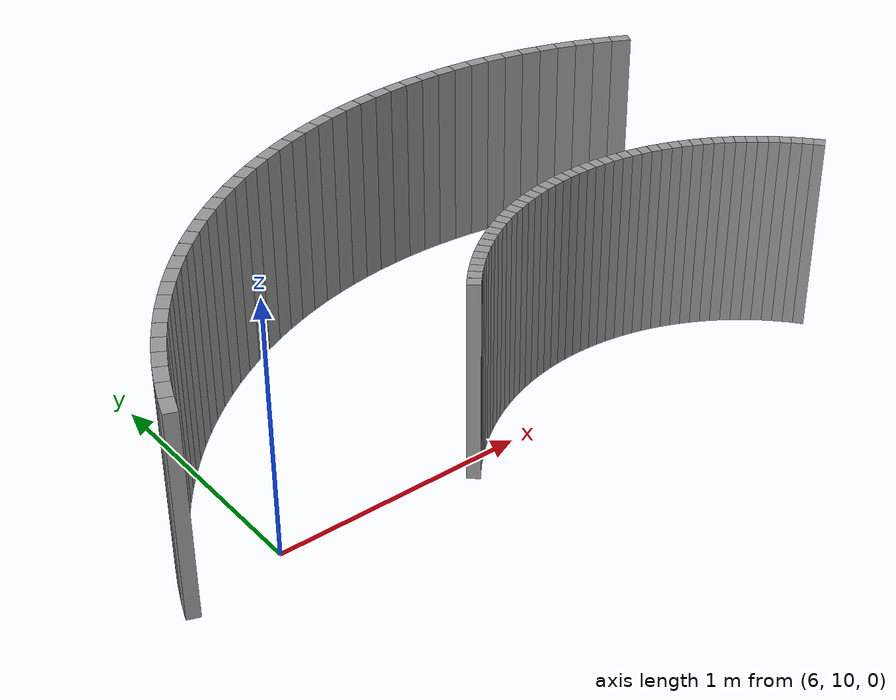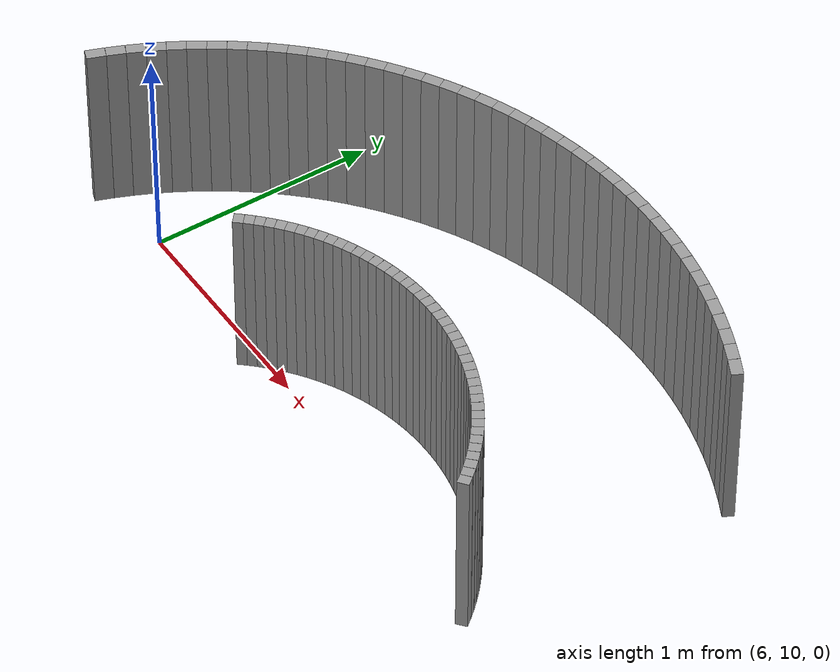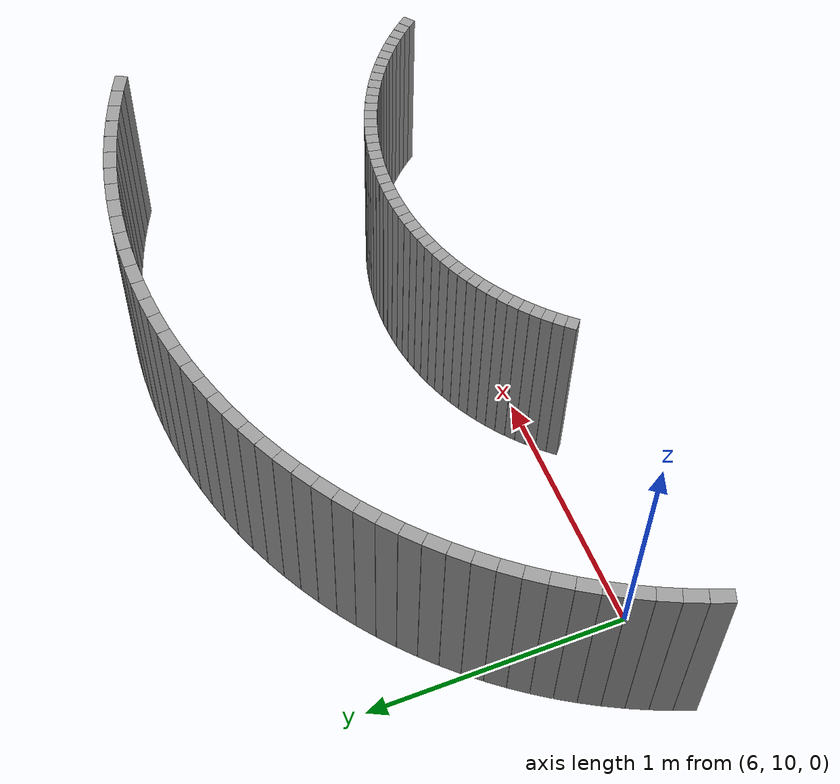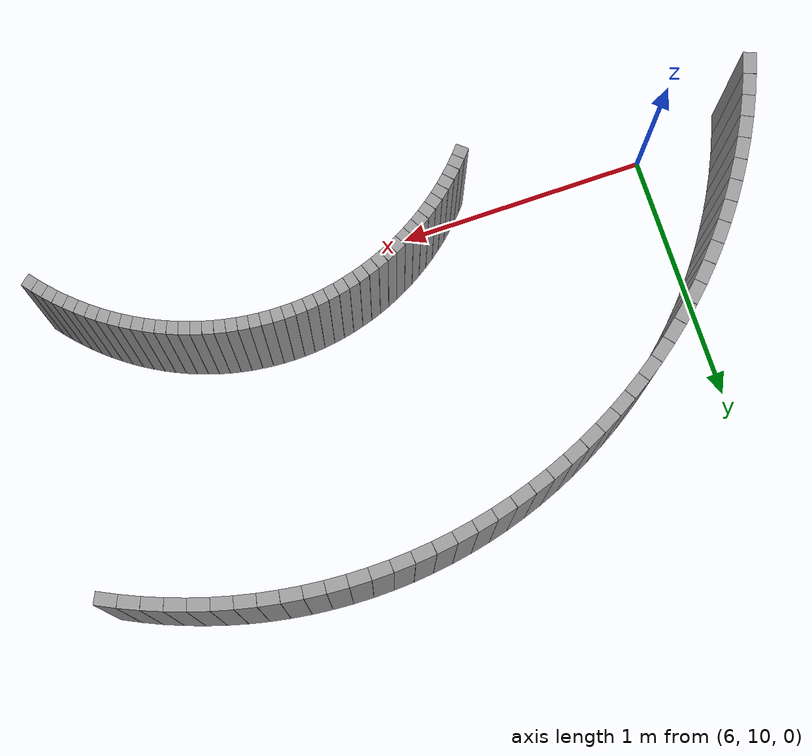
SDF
<sdf version="1.6">
 <model name="path_walls">
  <static>true</static>
  <model name="wall_left_233">
   <static>true</static>
   <pose>8.413291569347987 9.89759065078741 0.40 0 0 2.246835252250944</pose>
   <link name="wall_link">
    <visual name="wall_visual">
     <geometry><box><size>0.04273741812055125 0.05 0.8</size></box></geometry>
     <material><ambient>0.3 0.3 0.3 1</ambient><diffuse>0.6 0.6 0.6 1</diffuse></material>
    </visual>
    <collision name="wall_collision">
     <geometry><box><size>0.04273741812055125 0.05 0.8</size></box></geometry>
    </collision>
   </link>
  </model>
  <model name="wall_left_234">
   <static>true</static>
   <pose>8.385898298408511 9.9303835402917 0.40 0 0 2.2866022478659915</pose>
   <link name="wall_link">
    <visual name="wall_visual">
     <geometry><box><size>0.04273741812055249 0.05 0.8</size></box></geometry>
     <material><ambient>0.3 0.3 0.3 1</ambient><diffuse>0.6 0.6 0.6 1</diffuse></material>
    </visual>
    <collision name="wall_collision">
     <geometry><box><size>0.04273741812055249 0.05 0.8</size></box></geometry>
    </collision>
   </link>
  </model>
  <model name="wall_left_235">
   <static>true</static>
   <pose>8.357222953658342 9.962061442656967 0.40 0 0 2.326369243481072</pose>
   <link name="wall_link">
    <visual name="wall_visual">
     <geometry><box><size>0.04273741812055752 0.05 0.8</size></box></geometry>
     <material><ambient>0.3 0.3 0.3 1</ambient><diffuse>0.6 0.6 0.6 1</diffuse></material>
    </visual>
    <collision name="wall_collision">
     <geometry><box><size>0.04273741812055752 0.05 0.8</size></box></geometry>
    </collision>
   </link>
  </model>
  <model name="wall_left_236">
   <static>true</static>
   <pose>8.32731087671161 9.992574268608326 0.40 0 0 2.3661362390960896</pose>
   <link name="wall_link">
    <visual name="wall_visual">
     <geometry><box><size>0.04273741812056665 0.05 0.8</size></box></geometry>
     <material><ambient>0.3 0.3 0.3 1</ambient><diffuse>0.6 0.6 0.6 1</diffuse></material>
    </visual>
    <collision name="wall_collision">
     <geometry><box><size>0.04273741812056665 0.05 0.8</size></box></geometry>
    </collision>
   </link>
  </model>
  <model name="wall_left_237">
   <static>true</static>
   <pose>8.296209364710272 10.021873771096168 0.40 0 0 2.405903234711171</pose>
   <link name="wall_link">
    <visual name="wall_visual">
     <geometry><box><size>0.04273741812054912 0.05 0.8</size></box></geometry>
     <material><ambient>0.3 0.3 0.3 1</ambient><diffuse>0.6 0.6 0.6 1</diffuse></material>
    </visual>
    <collision name="wall_collision">
     <geometry><box><size>0.04273741812054912 0.05 0.8</size></box></geometry>
    </collision>
   </link>
  </model>
  <model name="wall_left_238">
   <static>true</static>
   <pose>8.263967595537574 10.049913621584679 0.40 0 0 2.44567023032623</pose>
   <link name="wall_link">
    <visual name="wall_visual">
     <geometry><box><size>0.042737418120538204 0.05 0.8</size></box></geometry>
     <material><ambient>0.3 0.3 0.3 1</ambient><diffuse>0.6 0.6 0.6 1</diffuse></material>
    </visual>
    <collision name="wall_collision">
     <geometry><box><size>0.042737418120538204 0.05 0.8</size></box></geometry>
    </collision>
   </link>
  </model>
  <model name="wall_left_239">
   <static>true</static>
   <pose>8.230636550057705 10.076649483306792 0.40 0 0 2.485437225941283</pose>
   <link name="wall_link">
    <visual name="wall_visual">
     <geometry><box><size>0.04273741812058645 0.05 0.8</size></box></geometry>
     <material><ambient>0.3 0.3 0.3 1</ambient><diffuse>0.6 0.6 0.6 1</diffuse></material>
    </visual>
    <collision name="wall_collision">
     <geometry><box><size>0.04273741812058645 0.05 0.8</size></box></geometry>
    </collision>
   </link>
  </model>
  <model name="wall_left_240">
   <static>true</static>
   <pose>8.196268931504626 10.102039081369679 0.40 0 0 2.525204221556357</pose>
   <link name="wall_link">
    <visual name="wall_visual">
     <geometry><box><size>0.042737418120535005 0.05 0.8</size></box></geometry>
     <material><ambient>0.3 0.3 0.3 1</ambient><diffuse>0.6 0.6 0.6 1</diffuse></material>
    </visual>
    <collision name="wall_collision">
     <geometry><box><size>0.042737418120535005 0.05 0.8</size></box></geometry>
    </collision>
   </link>
  </model>
  <model name="wall_left_241">
   <static>true</static>
   <pose>8.160919082147384 10.126042269600081 0.40 0 0 2.5649712171714274</pose>
   <link name="wall_link">
    <visual name="wall_visual">
     <geometry><box><size>0.042737418120560464 0.05 0.8</size></box></geometry>
     <material><ambient>0.3 0.3 0.3 1</ambient><diffuse>0.6 0.6 0.6 1</diffuse></material>
    </visual>
    <collision name="wall_collision">
     <geometry><box><size>0.042737418120560464 0.05 0.8</size></box></geometry>
    </collision>
   </link>
  </model>
  <model name="wall_left_242">
   <static>true</static>
   <pose>8.124642897363795 10.148621094023675 0.40 0 0 2.6047382127864864</pose>
   <link name="wall_link">
    <visual name="wall_visual">
     <geometry><box><size>0.042737418120553435 0.05 0.8</size></box></geometry>
     <material><ambient>0.3 0.3 0.3 1</ambient><diffuse>0.6 0.6 0.6 1</diffuse></material>
    </visual>
    <collision name="wall_collision">
     <geometry><box><size>0.042737418120553435 0.05 0.8</size></box></geometry>
    </collision>
   </link>
  </model>
  <model name="wall_left_243">
   <static>true</static>
   <pose>8.087497737258413 10.169739852878067 0.40 0 0 2.64450520840153</pose>
   <link name="wall_link">
    <visual name="wall_visual">
     <geometry><box><size>0.04273741812055853 0.05 0.8</size></box></geometry>
     <material><ambient>0.3 0.3 0.3 1</ambient><diffuse>0.6 0.6 0.6 1</diffuse></material>
    </visual>
    <collision name="wall_collision">
     <geometry><box><size>0.04273741812055853 0.05 0.8</size></box></geometry>
    </collision>
   </link>
  </model>
  <model name="wall_left_244">
   <static>true</static>
   <pose>8.049542335964375 10.189365153064646 0.40 0 0 2.6842722040166316</pose>
   <link name="wall_link">
    <visual name="wall_visual">
     <geometry><box><size>0.04273741812056176 0.05 0.8</size></box></geometry>
     <material><ambient>0.3 0.3 0.3 1</ambient><diffuse>0.6 0.6 0.6 1</diffuse></material>
    </visual>
    <collision name="wall_collision">
     <geometry><box><size>0.04273741812056176 0.05 0.8</size></box></geometry>
    </collision>
   </link>
  </model>
  <model name="wall_left_245">
   <static>true</static>
   <pose>8.010836708772688 10.207465962949929 0.40 0 0 2.7240391996316045</pose>
   <link name="wall_link">
    <visual name="wall_visual">
     <geometry><box><size>0.042737418120561775 0.05 0.8</size></box></geometry>
     <material><ambient>0.3 0.3 0.3 1</ambient><diffuse>0.6 0.6 0.6 1</diffuse></material>
    </visual>
    <collision name="wall_collision">
     <geometry><box><size>0.042737418120561775 0.05 0.8</size></box></geometry>
    </collision>
   </link>
  </model>
  <model name="wall_left_246">
   <static>true</static>
   <pose>7.971442057235716 10.224013661432945 0.40 0 0 2.7638061952467052</pose>
   <link name="wall_link">
    <visual name="wall_visual">
     <geometry><box><size>0.04273741812054289 0.05 0.8</size></box></geometry>
     <material><ambient>0.3 0.3 0.3 1</ambient><diffuse>0.6 0.6 0.6 1</diffuse></material>
    </visual>
    <collision name="wall_collision">
     <geometry><box><size>0.04273741812054289 0.05 0.8</size></box></geometry>
    </collision>
   </link>
  </model>
  <model name="wall_left_247">
   <static>true</static>
   <pose>7.931420672394919 10.238982083201087 0.40 0 0 2.803573190861785</pose>
   <link name="wall_link">
    <visual name="wall_visual">
     <geometry><box><size>0.04273741812056066 0.05 0.8</size></box></geometry>
     <material><ambient>0.3 0.3 0.3 1</ambient><diffuse>0.6 0.6 0.6 1</diffuse></material>
    </visual>
    <collision name="wall_collision">
     <geometry><box><size>0.04273741812056066 0.05 0.8</size></box></geometry>
    </collision>
   </link>
  </model>
  <model name="wall_left_248">
   <static>true</static>
   <pose>7.890835836285934 10.252347560102857 0.40 0 0 2.843340186476841</pose>
   <link name="wall_link">
    <visual name="wall_visual">
     <geometry><box><size>0.042737418120563 0.05 0.8</size></box></geometry>
     <material><ambient>0.3 0.3 0.3 1</ambient><diffuse>0.6 0.6 0.6 1</diffuse></material>
    </visual>
    <collision name="wall_collision">
     <geometry><box><size>0.042737418120563 0.05 0.8</size></box></geometry>
    </collision>
   </link>
  </model>
  <model name="wall_left_249">
   <static>true</static>
   <pose>7.84975172187669 10.264088958572055 0.40 0 0 2.8831071820918948</pose>
   <link name="wall_link">
    <visual name="wall_visual">
     <geometry><box><size>0.04273741812054328 0.05 0.8</size></box></geometry>
     <material><ambient>0.3 0.3 0.3 1</ambient><diffuse>0.6 0.6 0.6 1</diffuse></material>
    </visual>
    <collision name="wall_collision">
     <geometry><box><size>0.04273741812054328 0.05 0.8</size></box></geometry>
    </collision>
   </link>
  </model>
  <model name="wall_left_250">
   <static>true</static>
   <pose>7.808233291596716 10.274187713044311 0.40 0 0 2.922874177706979</pose>
   <link name="wall_link">
    <visual name="wall_visual">
     <geometry><box><size>0.04273741812055618 0.05 0.8</size></box></geometry>
     <material><ambient>0.3 0.3 0.3 1</ambient><diffuse>0.6 0.6 0.6 1</diffuse></material>
    </visual>
    <collision name="wall_collision">
     <geometry><box><size>0.04273741812055618 0.05 0.8</size></box></geometry>
    </collision>
   </link>
  </model>
  <model name="wall_left_251">
   <static>true</static>
   <pose>7.766346194618187 10.28262785531306 0.40 0 0 2.962641173321988</pose>
   <link name="wall_link">
    <visual name="wall_visual">
     <geometry><box><size>0.04273741812057693 0.05 0.8</size></box></geometry>
     <material><ambient>0.3 0.3 0.3 1</ambient><diffuse>0.6 0.6 0.6 1</diffuse></material>
    </visual>
    <collision name="wall_collision">
     <geometry><box><size>0.04273741812057693 0.05 0.8</size></box></geometry>
    </collision>
   </link>
  </model>
  <model name="wall_left_252">
   <static>true</static>
   <pose>7.724156663051156 10.28939603977853 0.40 0 0 3.00240816893712</pose>
   <link name="wall_link">
    <visual name="wall_visual">
     <geometry><box><size>0.04273741812052792 0.05 0.8</size></box></geometry>
     <material><ambient>0.3 0.3 0.3 1</ambient><diffuse>0.6 0.6 0.6 1</diffuse></material>
    </visual>
    <collision name="wall_collision">
     <geometry><box><size>0.04273741812052792 0.05 0.8</size></box></geometry>
    </collision>
   </link>
  </model>
  <model name="wall_left_253">
   <static>true</static>
   <pose>7.681731407216874 10.294481564549923 0.40 0 0 3.0421751645520887</pose>
   <link name="wall_link">
    <visual name="wall_visual">
     <geometry><box><size>0.04273741812058962 0.05 0.8</size></box></geometry>
     <material><ambient>0.3 0.3 0.3 1</ambient><diffuse>0.6 0.6 0.6 1</diffuse></material>
    </visual>
    <collision name="wall_collision">
     <geometry><box><size>0.04273741812058962 0.05 0.8</size></box></geometry>
    </collision>
   </link>
  </model>
  <model name="wall_left_254">
   <static>true</static>
   <pose>7.639137510165136 10.297876388367264 0.40 0 0 3.081942160167207</pose>
   <link name="wall_link">
    <visual name="wall_visual">
     <geometry><box><size>0.04273741812053023 0.05 0.8</size></box></geometry>
     <material><ambient>0.3 0.3 0.3 1</ambient><diffuse>0.6 0.6 0.6 1</diffuse></material>
    </visual>
    <collision name="wall_collision">
     <geometry><box><size>0.04273741812053023 0.05 0.8</size></box></geometry>
    </collision>
   </link>
  </model>
  <model name="wall_left_255">
   <static>true</static>
   <pose>7.596442321602174 10.299575143316304 0.40 0 0 3.121709155782292</pose>
   <link name="wall_link">
    <visual name="wall_visual">
     <geometry><box><size>0.042737418120563544 0.05 0.8</size></box></geometry>
     <material><ambient>0.3 0.3 0.3 1</ambient><diffuse>0.6 0.6 0.6 1</diffuse></material>
    </visual>
    <collision name="wall_collision">
     <geometry><box><size>0.042737418120563544 0.05 0.8</size></box></geometry>
    </collision>
   </link>
  </model>
  <model name="wall_left_256">
   <static>true</static>
   <pose>7.553713351396885 10.299575143316305 0.40 0 0 -3.121709155782326</pose>
   <link name="wall_link">
    <visual name="wall_visual">
     <geometry><box><size>0.04273741812054752 0.05 0.8</size></box></geometry>
     <material><ambient>0.3 0.3 0.3 1</ambient><diffuse>0.6 0.6 0.6 1</diffuse></material>
    </visual>
    <collision name="wall_collision">
     <geometry><box><size>0.04273741812054752 0.05 0.8</size></box></geometry>
    </collision>
   </link>
  </model>
  <model name="wall_left_257">
   <static>true</static>
   <pose>7.511018162833917 10.29787638836726 0.40 0 0 -3.0819421601670403</pose>
   <link name="wall_link">
    <visual name="wall_visual">
     <geometry><box><size>0.04273741812056002 0.05 0.8</size></box></geometry>
     <material><ambient>0.3 0.3 0.3 1</ambient><diffuse>0.6 0.6 0.6 1</diffuse></material>
    </visual>
    <collision name="wall_collision">
     <geometry><box><size>0.04273741812056002 0.05 0.8</size></box></geometry>
    </collision>
   </link>
  </model>
  <model name="wall_left_258">
   <static>true</static>
   <pose>7.468424265782171 10.294481564549919 0.40 0 0 -3.042175164552225</pose>
   <link name="wall_link">
    <visual name="wall_visual">
     <geometry><box><size>0.04273741812057654 0.05 0.8</size></box></geometry>
     <material><ambient>0.3 0.3 0.3 1</ambient><diffuse>0.6 0.6 0.6 1</diffuse></material>
    </visual>
    <collision name="wall_collision">
     <geometry><box><size>0.04273741812057654 0.05 0.8</size></box></geometry>
    </collision>
   </link>
  </model>
  <model name="wall_left_259">
   <static>true</static>
   <pose>7.425999009947896 10.28939603977853 0.40 0 0 -3.002408168937117</pose>
   <link name="wall_link">
    <visual name="wall_visual">
     <geometry><box><size>0.04273741812052703 0.05 0.8</size></box></geometry>
     <material><ambient>0.3 0.3 0.3 1</ambient><diffuse>0.6 0.6 0.6 1</diffuse></material>
    </visual>
    <collision name="wall_collision">
     <geometry><box><size>0.04273741812052703 0.05 0.8</size></box></geometry>
    </collision>
   </link>
  </model>
  <model name="wall_left_260">
   <static>true</static>
   <pose>7.383809478380866 10.28262785531306 0.40 0 0 -2.962641173321977</pose>
   <link name="wall_link">
    <visual name="wall_visual">
     <geometry><box><size>0.04273741812057431 0.05 0.8</size></box></geometry>
     <material><ambient>0.3 0.3 0.3 1</ambient><diffuse>0.6 0.6 0.6 1</diffuse></material>
    </visual>
    <collision name="wall_collision">
     <geometry><box><size>0.04273741812057431 0.05 0.8</size></box></geometry>
    </collision>
   </link>
  </model>
  <model name="wall_left_261">
   <static>true</static>
   <pose>7.341922381402337 10.274187713044311 0.40 0 0 -2.922874177706993</pose>
   <link name="wall_link">
    <visual name="wall_visual">
     <geometry><box><size>0.042737418120558784 0.05 0.8</size></box></geometry>
     <material><ambient>0.3 0.3 0.3 1</ambient><diffuse>0.6 0.6 0.6 1</diffuse></material>
    </visual>
    <collision name="wall_collision">
     <geometry><box><size>0.042737418120558784 0.05 0.8</size></box></geometry>
    </collision>
   </link>
  </model>
  <model name="wall_left_262">
   <static>true</static>
   <pose>7.300403951122363 10.264088958572055 0.40 0 0 -2.8831071820918734</pose>
   <link name="wall_link">
    <visual name="wall_visual">
     <geometry><box><size>0.042737418120539855 0.05 0.8</size></box></geometry>
     <material><ambient>0.3 0.3 0.3 1</ambient><diffuse>0.6 0.6 0.6 1</diffuse></material>
    </visual>
    <collision name="wall_collision">
     <geometry><box><size>0.042737418120539855 0.05 0.8</size></box></geometry>
    </collision>
   </link>
  </model>
  <model name="wall_left_263">
   <static>true</static>
   <pose>7.25931983671312 10.252347560102857 0.40 0 0 -2.8433401864768775</pose>
   <link name="wall_link">
    <visual name="wall_visual">
     <geometry><box><size>0.042737418120568096 0.05 0.8</size></box></geometry>
     <material><ambient>0.3 0.3 0.3 1</ambient><diffuse>0.6 0.6 0.6 1</diffuse></material>
    </visual>
    <collision name="wall_collision">
     <geometry><box><size>0.042737418120568096 0.05 0.8</size></box></geometry>
    </collision>
   </link>
  </model>
  <model name="wall_left_264">
   <static>true</static>
   <pose>7.218735000604138 10.238982083201089 0.40 0 0 -2.8035731908617465</pose>
   <link name="wall_link">
    <visual name="wall_visual">
     <geometry><box><size>0.042737418120545226 0.05 0.8</size></box></geometry>
     <material><ambient>0.3 0.3 0.3 1</ambient><diffuse>0.6 0.6 0.6 1</diffuse></material>
    </visual>
    <collision name="wall_collision">
     <geometry><box><size>0.042737418120545226 0.05 0.8</size></box></geometry>
    </collision>
   </link>
  </model>
  <model name="wall_left_265">
   <static>true</static>
   <pose>7.178713615763337 10.224013661432942 0.40 0 0 -2.763806195246688</pose>
   <link name="wall_link">
    <visual name="wall_visual">
     <geometry><box><size>0.04273741812056993 0.05 0.8</size></box></geometry>
     <material><ambient>0.3 0.3 0.3 1</ambient><diffuse>0.6 0.6 0.6 1</diffuse></material>
    </visual>
    <collision name="wall_collision">
     <geometry><box><size>0.04273741812056993 0.05 0.8</size></box></geometry>
    </collision>
   </link>
  </model>
  <model name="wall_left_266">
   <static>true</static>
   <pose>7.139318964226359 10.207465962949925 0.40 0 0 -2.7240391996316387</pose>
   <link name="wall_link">
    <visual name="wall_visual">
     <geometry><box><size>0.04273741812054753 0.05 0.8</size></box></geometry>
     <material><ambient>0.3 0.3 0.3 1</ambient><diffuse>0.6 0.6 0.6 1</diffuse></material>
    </visual>
    <collision name="wall_collision">
     <geometry><box><size>0.04273741812054753 0.05 0.8</size></box></geometry>
    </collision>
   </link>
  </model>
  <model name="wall_left_267">
   <static>true</static>
   <pose>7.1006133370346785 10.189365153064646 0.40 0 0 -2.6842722040166316</pose>
   <link name="wall_link">
    <visual name="wall_visual">
     <geometry><box><size>0.04273741812056176 0.05 0.8</size></box></geometry>
     <material><ambient>0.3 0.3 0.3 1</ambient><diffuse>0.6 0.6 0.6 1</diffuse></material>
    </visual>
    <collision name="wall_collision">
     <geometry><box><size>0.04273741812056176 0.05 0.8</size></box></geometry>
    </collision>
   </link>
  </model>
  <model name="wall_left_268">
   <static>true</static>
   <pose>7.06265793574064 10.169739852878067 0.40 0 0 -2.64450520840153</pose>
   <link name="wall_link">
    <visual name="wall_visual">
     <geometry><box><size>0.04273741812055853 0.05 0.8</size></box></geometry>
     <material><ambient>0.3 0.3 0.3 1</ambient><diffuse>0.6 0.6 0.6 1</diffuse></material>
    </visual>
    <collision name="wall_collision">
     <geometry><box><size>0.04273741812055853 0.05 0.8</size></box></geometry>
    </collision>
   </link>
  </model>
  <model name="wall_left_269">
   <static>true</static>
   <pose>7.02551277563526 10.148621094023675 0.40 0 0 -2.6047382127864687</pose>
   <link name="wall_link">
    <visual name="wall_visual">
     <geometry><box><size>0.04273741812054871 0.05 0.8</size></box></geometry>
     <material><ambient>0.3 0.3 0.3 1</ambient><diffuse>0.6 0.6 0.6 1</diffuse></material>
    </visual>
    <collision name="wall_collision">
     <geometry><box><size>0.04273741812054871 0.05 0.8</size></box></geometry>
    </collision>
   </link>
  </model>
  <model name="wall_left_270">
   <static>true</static>
   <pose>6.98923659085167 10.126042269600081 0.40 0 0 -2.564971217171437</pose>
   <link name="wall_link">
    <visual name="wall_visual">
     <geometry><box><size>0.04273741812056761 0.05 0.8</size></box></geometry>
     <material><ambient>0.3 0.3 0.3 1</ambient><diffuse>0.6 0.6 0.6 1</diffuse></material>
    </visual>
    <collision name="wall_collision">
     <geometry><box><size>0.04273741812056761 0.05 0.8</size></box></geometry>
    </collision>
   </link>
  </model>
  <model name="wall_left_271">
   <static>true</static>
   <pose>6.953886741494424 10.102039081369677 0.40 0 0 -2.525204221556393</pose>
   <link name="wall_link">
    <visual name="wall_visual">
     <geometry><box><size>0.04273741812053718 0.05 0.8</size></box></geometry>
     <material><ambient>0.3 0.3 0.3 1</ambient><diffuse>0.6 0.6 0.6 1</diffuse></material>
    </visual>
    <collision name="wall_collision">
     <geometry><box><size>0.04273741812053718 0.05 0.8</size></box></geometry>
    </collision>
   </link>
  </model>
  <model name="wall_left_272">
   <static>true</static>
   <pose>6.919519122941347 10.076649483306792 0.40 0 0 -2.485437225941235</pose>
   <link name="wall_link">
    <visual name="wall_visual">
     <geometry><box><size>0.04273741812057794 0.05 0.8</size></box></geometry>
     <material><ambient>0.3 0.3 0.3 1</ambient><diffuse>0.6 0.6 0.6 1</diffuse></material>
    </visual>
    <collision name="wall_collision">
     <geometry><box><size>0.04273741812057794 0.05 0.8</size></box></geometry>
    </collision>
   </link>
  </model>
  <model name="wall_left_273">
   <static>true</static>
   <pose>6.886188077461483 10.04991362158468 0.40 0 0 -2.4456702303262485</pose>
   <link name="wall_link">
    <visual name="wall_visual">
     <geometry><box><size>0.04273741812053638 0.05 0.8</size></box></geometry>
     <material><ambient>0.3 0.3 0.3 1</ambient><diffuse>0.6 0.6 0.6 1</diffuse></material>
    </visual>
    <collision name="wall_collision">
     <geometry><box><size>0.04273741812053638 0.05 0.8</size></box></geometry>
    </collision>
   </link>
  </model>
  <model name="wall_left_274">
   <static>true</static>
   <pose>6.853946308288782 10.021873771096168 0.40 0 0 -2.405903234711173</pose>
   <link name="wall_link">
    <visual name="wall_visual">
     <geometry><box><size>0.04273741812055982 0.05 0.8</size></box></geometry>
     <material><ambient>0.3 0.3 0.3 1</ambient><diffuse>0.6 0.6 0.6 1</diffuse></material>
    </visual>
    <collision name="wall_collision">
     <geometry><box><size>0.04273741812055982 0.05 0.8</size></box></geometry>
    </collision>
   </link>
  </model>
  <model name="wall_left_275">
   <static>true</static>
   <pose>6.822844796287441 9.992574268608326 0.40 0 0 -2.3661362390961216</pose>
   <link name="wall_link">
    <visual name="wall_visual">
     <geometry><box><size>0.042737418120555364 0.05 0.8</size></box></geometry>
     <material><ambient>0.3 0.3 0.3 1</ambient><diffuse>0.6 0.6 0.6 1</diffuse></material>
    </visual>
    <collision name="wall_collision">
     <geometry><box><size>0.042737418120555364 0.05 0.8</size></box></geometry>
    </collision>
   </link>
  </model>
  <model name="wall_left_276">
   <static>true</static>
   <pose>6.792932719340709 9.962061442656964 0.40 0 0 -2.3263692434810257</pose>
   <link name="wall_link">
    <visual name="wall_visual">
     <geometry><box><size>0.042737418120575174 0.05 0.8</size></box></geometry>
     <material><ambient>0.3 0.3 0.3 1</ambient><diffuse>0.6 0.6 0.6 1</diffuse></material>
    </visual>
    <collision name="wall_collision">
     <geometry><box><size>0.042737418120575174 0.05 0.8</size></box></geometry>
    </collision>
   </link>
  </model>
  <model name="wall_left_277">
   <static>true</static>
   <pose>6.764257374590537 9.930383540291697 0.40 0 0 -2.286602247866018</pose>
   <link name="wall_link">
    <visual name="wall_visual">
     <geometry><box><size>0.04273741812054171 0.05 0.8</size></box></geometry>
     <material><ambient>0.3 0.3 0.3 1</ambient><diffuse>0.6 0.6 0.6 1</diffuse></material>
    </visual>
    <collision name="wall_collision">
     <geometry><box><size>0.04273741812054171 0.05 0.8</size></box></geometry>
    </collision>
   </link>
  </model>
  <model name="wall_right_244">
   <static>true</static>
   <pose>8.491000553780129 11.086426656271975 0.40 0 0 2.684272204016584</pose>
   <link name="wall_link">
    <visual name="wall_visual">
     <geometry><box><size>0.08250179345068859 0.05 0.8</size></box></geometry>
     <material><ambient>0.3 0.3 0.3 1</ambient><diffuse>0.6 0.6 0.6 1</diffuse></material>
    </visual>
    <collision name="wall_collision">
     <geometry><box><size>0.08250179345068859 0.05 0.8</size></box></geometry>
    </collision>
   </link>
  </model>
  <model name="wall_right_245">
   <static>true</static>
   <pose>8.416281869302283 11.121369087146789 0.40 0 0 2.724039199631666</pose>
   <link name="wall_link">
    <visual name="wall_visual">
     <geometry><box><size>0.08250179345069655 0.05 0.8</size></box></geometry>
     <material><ambient>0.3 0.3 0.3 1</ambient><diffuse>0.6 0.6 0.6 1</diffuse></material>
    </visual>
    <collision name="wall_collision">
     <geometry><box><size>0.08250179345069655 0.05 0.8</size></box></geometry>
    </collision>
   </link>
  </model>
  <model name="wall_right_246">
   <static>true</static>
   <pose>8.34023306834295 11.153313337931408 0.40 0 0 2.7638061952467066</pose>
   <link name="wall_link">
    <visual name="wall_visual">
     <geometry><box><size>0.08250179345070735 0.05 0.8</size></box></geometry>
     <material><ambient>0.3 0.3 0.3 1</ambient><diffuse>0.6 0.6 0.6 1</diffuse></material>
    </visual>
    <collision name="wall_collision">
     <geometry><box><size>0.08250179345070735 0.05 0.8</size></box></geometry>
    </collision>
   </link>
  </model>
  <model name="wall_right_247">
   <static>true</static>
   <pose>8.26297439968794 11.182208898199343 0.40 0 0 2.803573190861769</pose>
   <link name="wall_link">
    <visual name="wall_visual">
     <geometry><box><size>0.0825017934506938 0.05 0.8</size></box></geometry>
     <material><ambient>0.3 0.3 0.3 1</ambient><diffuse>0.6 0.6 0.6 1</diffuse></material>
    </visual>
    <collision name="wall_collision">
     <geometry><box><size>0.0825017934506938 0.05 0.8</size></box></geometry>
    </collision>
   </link>
  </model>
  <model name="wall_right_248">
   <static>true</static>
   <pose>8.184628025172564 11.208010078130457 0.40 0 0 2.843340186476846</pose>
   <link name="wall_link">
    <visual name="wall_visual">
     <geometry><box><size>0.08250179345068862 0.05 0.8</size></box></geometry>
     <material><ambient>0.3 0.3 0.3 1</ambient><diffuse>0.6 0.6 0.6 1</diffuse></material>
    </visual>
    <collision name="wall_collision">
     <geometry><box><size>0.08250179345068862 0.05 0.8</size></box></geometry>
    </collision>
   </link>
  </model>
  <model name="wall_right_249">
   <static>true</static>
   <pose>8.105317826518654 11.23067608075597 0.40 0 0 2.883107182091884</pose>
   <link name="wall_link">
    <visual name="wall_visual">
     <geometry><box><size>0.08250179345071162 0.05 0.8</size></box></geometry>
     <material><ambient>0.3 0.3 0.3 1</ambient><diffuse>0.6 0.6 0.6 1</diffuse></material>
    </visual>
    <collision name="wall_collision">
     <geometry><box><size>0.08250179345071162 0.05 0.8</size></box></geometry>
    </collision>
   </link>
  </model>
  <model name="wall_right_250">
   <static>true</static>
   <pose>8.02516920945213 11.250171066466837 0.40 0 0 2.922874177706985</pose>
   <link name="wall_link">
    <visual name="wall_visual">
     <geometry><box><size>0.08250179345069444 0.05 0.8</size></box></geometry>
     <material><ambient>0.3 0.3 0.3 1</ambient><diffuse>0.6 0.6 0.6 1</diffuse></material>
    </visual>
    <collision name="wall_collision">
     <geometry><box><size>0.08250179345069444 0.05 0.8</size></box></geometry>
    </collision>
   </link>
  </model>
  <model name="wall_right_251">
   <static>true</static>
   <pose>7.944308905410777 11.26646420968354 0.40 0 0 2.9626411733220084</pose>
   <link name="wall_link">
    <visual name="wall_visual">
     <geometry><box><size>0.08250179345067758 0.05 0.8</size></box></geometry>
     <material><ambient>0.3 0.3 0.3 1</ambient><diffuse>0.6 0.6 0.6 1</diffuse></material>
    </visual>
    <collision name="wall_collision">
     <geometry><box><size>0.08250179345067758 0.05 0.8</size></box></geometry>
    </collision>
   </link>
  </model>
  <model name="wall_right_252">
   <static>true</static>
   <pose>7.8628647711557145 11.279529747597683 0.40 0 0 3.002408168937084</pose>
   <link name="wall_link">
    <visual name="wall_visual">
     <geometry><box><size>0.08250179345072327 0.05 0.8</size></box></geometry>
     <material><ambient>0.3 0.3 0.3 1</ambient><diffuse>0.6 0.6 0.6 1</diffuse></material>
    </visual>
    <collision name="wall_collision">
     <geometry><box><size>0.08250179345072327 0.05 0.8</size></box></geometry>
    </collision>
   </link>
  </model>
  <model name="wall_right_253">
   <static>true</static>
   <pose>7.780965586603688 11.289347020908256 0.40 0 0 3.0421751645521176</pose>
   <link name="wall_link">
    <visual name="wall_visual">
     <geometry><box><size>0.0825017934506621 0.05 0.8</size></box></geometry>
     <material><ambient>0.3 0.3 0.3 1</ambient><diffuse>0.6 0.6 0.6 1</diffuse></material>
    </visual>
    <collision name="wall_collision">
     <geometry><box><size>0.0825017934506621 0.05 0.8</size></box></geometry>
    </collision>
   </link>
  </model>
  <model name="wall_right_254">
   <static>true</static>
   <pose>7.698740851199469 11.295900506488262 0.40 0 0 3.0819421601671784</pose>
   <link name="wall_link">
    <visual name="wall_visual">
     <geometry><box><size>0.08250179345072213 0.05 0.8</size></box></geometry>
     <material><ambient>0.3 0.3 0.3 1</ambient><diffuse>0.6 0.6 0.6 1</diffuse></material>
    </visual>
    <collision name="wall_collision">
     <geometry><box><size>0.08250179345072213 0.05 0.8</size></box></geometry>
    </collision>
   </link>
  </model>
  <model name="wall_right_255">
   <static>true</static>
   <pose>7.616320579150631 11.299179841929956 0.40 0 0 3.1217091557823005</pose>
   <link name="wall_link">
    <visual name="wall_visual">
     <geometry><box><size>0.08250179345069146 0.05 0.8</size></box></geometry>
     <material><ambient>0.3 0.3 0.3 1</ambient><diffuse>0.6 0.6 0.6 1</diffuse></material>
    </visual>
    <collision name="wall_collision">
     <geometry><box><size>0.08250179345069146 0.05 0.8</size></box></geometry>
    </collision>
   </link>
  </model>
  <model name="wall_right_256">
   <static>true</static>
   <pose>7.533835093848415 11.299179841929956 0.40 0 0 -3.121709155782282</pose>
   <link name="wall_link">
    <visual name="wall_visual">
     <geometry><box><size>0.08250179345070392 0.05 0.8</size></box></geometry>
     <material><ambient>0.3 0.3 0.3 1</ambient><diffuse>0.6 0.6 0.6 1</diffuse></material>
    </visual>
    <collision name="wall_collision">
     <geometry><box><size>0.08250179345070392 0.05 0.8</size></box></geometry>
    </collision>
   </link>
  </model>
  <model name="wall_right_257">
   <static>true</static>
   <pose>7.451414821799585 11.295900506488259 0.40 0 0 -3.081942160167137</pose>
   <link name="wall_link">
    <visual name="wall_visual">
     <geometry><box><size>0.08250179345069475 0.05 0.8</size></box></geometry>
     <material><ambient>0.3 0.3 0.3 1</ambient><diffuse>0.6 0.6 0.6 1</diffuse></material>
    </visual>
    <collision name="wall_collision">
     <geometry><box><size>0.08250179345069475 0.05 0.8</size></box></geometry>
    </collision>
   </link>
  </model>
  <model name="wall_right_258">
   <static>true</static>
   <pose>7.369190086395371 11.289347020908256 0.40 0 0 -3.0421751645521775</pose>
   <link name="wall_link">
    <visual name="wall_visual">
     <geometry><box><size>0.08250179345067588 0.05 0.8</size></box></geometry>
     <material><ambient>0.3 0.3 0.3 1</ambient><diffuse>0.6 0.6 0.6 1</diffuse></material>
    </visual>
    <collision name="wall_collision">
     <geometry><box><size>0.08250179345067588 0.05 0.8</size></box></geometry>
    </collision>
   </link>
  </model>
  <model name="wall_right_259">
   <static>true</static>
   <pose>7.287290901843338 11.279529747597683 0.40 0 0 -3.0024081689370856</pose>
   <link name="wall_link">
    <visual name="wall_visual">
     <geometry><box><size>0.08250179345072416 0.05 0.8</size></box></geometry>
     <material><ambient>0.3 0.3 0.3 1</ambient><diffuse>0.6 0.6 0.6 1</diffuse></material>
    </visual>
    <collision name="wall_collision">
     <geometry><box><size>0.08250179345072416 0.05 0.8</size></box></geometry>
    </collision>
   </link>
  </model>
  <model name="wall_right_260">
   <static>true</static>
   <pose>7.205846767588274 11.26646420968354 0.40 0 0 -2.96264117332201</pose>
   <link name="wall_link">
    <visual name="wall_visual">
     <geometry><box><size>0.08250179345067846 0.05 0.8</size></box></geometry>
     <material><ambient>0.3 0.3 0.3 1</ambient><diffuse>0.6 0.6 0.6 1</diffuse></material>
    </visual>
    <collision name="wall_collision">
     <geometry><box><size>0.08250179345067846 0.05 0.8</size></box></geometry>
    </collision>
   </link>
  </model>
  <model name="wall_right_261">
   <static>true</static>
   <pose>7.12498646354692 11.250171066466837 0.40 0 0 -2.922874177706985</pose>
   <link name="wall_link">
    <visual name="wall_visual">
     <geometry><box><size>0.08250179345069444 0.05 0.8</size></box></geometry>
     <material><ambient>0.3 0.3 0.3 1</ambient><diffuse>0.6 0.6 0.6 1</diffuse></material>
    </visual>
    <collision name="wall_collision">
     <geometry><box><size>0.08250179345069444 0.05 0.8</size></box></geometry>
    </collision>
   </link>
  </model>
  <model name="wall_right_262">
   <static>true</static>
   <pose>7.044837846480397 11.23067608075597 0.40 0 0 -2.883107182091884</pose>
   <link name="wall_link">
    <visual name="wall_visual">
     <geometry><box><size>0.08250179345071162 0.05 0.8</size></box></geometry>
     <material><ambient>0.3 0.3 0.3 1</ambient><diffuse>0.6 0.6 0.6 1</diffuse></material>
    </visual>
    <collision name="wall_collision">
     <geometry><box><size>0.08250179345071162 0.05 0.8</size></box></geometry>
    </collision>
   </link>
  </model>
  <model name="wall_right_263">
   <static>true</static>
   <pose>6.965527647826487 11.208010078130457 0.40 0 0 -2.8433401864768366</pose>
   <link name="wall_link">
    <visual name="wall_visual">
     <geometry><box><size>0.08250179345068608 0.05 0.8</size></box></geometry>
     <material><ambient>0.3 0.3 0.3 1</ambient><diffuse>0.6 0.6 0.6 1</diffuse></material>
    </visual>
    <collision name="wall_collision">
     <geometry><box><size>0.08250179345068608 0.05 0.8</size></box></geometry>
    </collision>
   </link>
  </model>
  <model name="wall_right_264">
   <static>true</static>
   <pose>6.887181273311107 11.182208898199342 0.40 0 0 -2.803573190861782</pose>
   <link name="wall_link">
    <visual name="wall_visual">
     <geometry><box><size>0.08250179345070756 0.05 0.8</size></box></geometry>
     <material><ambient>0.3 0.3 0.3 1</ambient><diffuse>0.6 0.6 0.6 1</diffuse></material>
    </visual>
    <collision name="wall_collision">
     <geometry><box><size>0.08250179345070756 0.05 0.8</size></box></geometry>
    </collision>
   </link>
  </model>
  <model name="wall_right_265">
   <static>true</static>
   <pose>6.809922604656101 11.153313337931408 0.40 0 0 -2.7638061952466875</pose>
   <link name="wall_link">
    <visual name="wall_visual">
     <geometry><box><size>0.08250179345068409 0.05 0.8</size></box></geometry>
     <material><ambient>0.3 0.3 0.3 1</ambient><diffuse>0.6 0.6 0.6 1</diffuse></material>
    </visual>
    <collision name="wall_collision">
     <geometry><box><size>0.08250179345068409 0.05 0.8</size></box></geometry>
    </collision>
   </link>
  </model>
  <model name="wall_right_266">
   <static>true</static>
   <pose>6.733873803696776 11.121369087146793 0.40 0 0 -2.724039199631666</pose>
   <link name="wall_link">
    <visual name="wall_visual">
     <geometry><box><size>0.0825017934507053 0.05 0.8</size></box></geometry>
     <material><ambient>0.3 0.3 0.3 1</ambient><diffuse>0.6 0.6 0.6 1</diffuse></material>
    </visual>
    <collision name="wall_collision">
     <geometry><box><size>0.0825017934507053 0.05 0.8</size></box></geometry>
    </collision>
   </link>
  </model>
  <model name="wall_right_267">
   <static>true</static>
   <pose>6.659155119218924 11.086426656271975 0.40 0 0 -2.6842722040165934</pose>
   <link name="wall_link">
    <visual name="wall_visual">
     <geometry><box><size>0.08250179345069018 0.05 0.8</size></box></geometry>
     <material><ambient>0.3 0.3 0.3 1</ambient><diffuse>0.6 0.6 0.6 1</diffuse></material>
    </visual>
    <collision name="wall_collision">
     <geometry><box><size>0.08250179345069018 0.05 0.8</size></box></geometry>
    </collision>
   </link>
  </model>
  <model name="wall_right_268">
   <static>true</static>
   <pose>6.585884696820796 11.048541296472427 0.40 0 0 -2.6445052084015477</pose>
   <link name="wall_link">
    <visual name="wall_visual">
     <geometry><box><size>0.08250179345069389 0.05 0.8</size></box></geometry>
     <material><ambient>0.3 0.3 0.3 1</ambient><diffuse>0.6 0.6 0.6 1</diffuse></material>
    </visual>
    <collision name="wall_collision">
     <geometry><box><size>0.08250179345069389 0.05 0.8</size></box></geometry>
    </collision>
   </link>
  </model>
  <model name="wall_right_269">
   <static>true</static>
   <pose>6.51417839210059 11.007772912289148 0.40 0 0 -2.604738212786455</pose>
   <link name="wall_link">
    <visual name="wall_visual">
     <geometry><box><size>0.08250179345070417 0.05 0.8</size></box></geometry>
     <material><ambient>0.3 0.3 0.3 1</ambient><diffuse>0.6 0.6 0.6 1</diffuse></material>
    </visual>
    <collision name="wall_collision">
     <geometry><box><size>0.08250179345070417 0.05 0.8</size></box></geometry>
    </collision>
   </link>
  </model>
  <model name="wall_right_270">
   <static>true</static>
   <pose>6.444149587464979 10.964185966917295 0.40 0 0 -2.5649712171714474</pose>
   <link name="wall_link">
    <visual name="wall_visual">
     <geometry><box><size>0.08250179345068297 0.05 0.8</size></box></geometry>
     <material><ambient>0.3 0.3 0.3 1</ambient><diffuse>0.6 0.6 0.6 1</diffuse></material>
    </visual>
    <collision name="wall_collision">
     <geometry><box><size>0.08250179345068297 0.05 0.8</size></box></geometry>
    </collision>
   </link>
  </model>
  <model name="wall_right_271">
   <static>true</static>
   <pose>6.375909012848183 10.917849380276587 0.40 0 0 -2.5252042215563515</pose>
   <link name="wall_link">
    <visual name="wall_visual">
     <geometry><box><size>0.08250179345071498 0.05 0.8</size></box></geometry>
     <material><ambient>0.3 0.3 0.3 1</ambient><diffuse>0.6 0.6 0.6 1</diffuse></material>
    </visual>
    <collision name="wall_collision">
     <geometry><box><size>0.08250179345071498 0.05 0.8</size></box></geometry>
    </collision>
   </link>
  </model>
  <model name="wall_right_272">
   <static>true</static>
   <pose>6.309564570625215 10.868836420034782 0.40 0 0 -2.485437225941292</pose>
   <link name="wall_link">
    <visual name="wall_visual">
     <geometry><box><size>0.08250179345067632 0.05 0.8</size></box></geometry>
     <material><ambient>0.3 0.3 0.3 1</ambient><diffuse>0.6 0.6 0.6 1</diffuse></material>
    </visual>
    <collision name="wall_collision">
     <geometry><box><size>0.08250179345067632 0.05 0.8</size></box></geometry>
    </collision>
   </link>
  </model>
  <model name="wall_right_273">
   <static>true</static>
   <pose>6.245221164996018 10.817224585756405 0.40 0 0 -2.4456702303262285</pose>
   <link name="wall_link">
    <visual name="wall_visual">
     <geometry><box><size>0.0825017934507156 0.05 0.8</size></box></geometry>
     <material><ambient>0.3 0.3 0.3 1</ambient><diffuse>0.6 0.6 0.6 1</diffuse></material>
    </visual>
    <collision name="wall_collision">
     <geometry><box><size>0.0825017934507156 0.05 0.8</size></box></geometry>
    </collision>
   </link>
  </model>
  <model name="wall_right_274">
   <static>true</static>
   <pose>6.18298053611038 10.763095486360022 0.40 0 0 -2.4059032347111686</pose>
   <link name="wall_link">
    <visual name="wall_visual">
     <geometry><box><size>0.08250179345069206 0.05 0.8</size></box></geometry>
     <material><ambient>0.3 0.3 0.3 1</ambient><diffuse>0.6 0.6 0.6 1</diffuse></material>
    </visual>
    <collision name="wall_collision">
     <geometry><box><size>0.08250179345069206 0.05 0.8</size></box></geometry>
    </collision>
   </link>
  </model>
  <model name="wall_right_275">
   <static>true</static>
   <pose>6.122941099195854 10.70653471107778 0.40 0 0 -2.366136239096091</pose>
   <link name="wall_link">
    <visual name="wall_visual">
     <geometry><box><size>0.08250179345069854 0.05 0.8</size></box></geometry>
     <material><ambient>0.3 0.3 0.3 1</ambient><diffuse>0.6 0.6 0.6 1</diffuse></material>
    </visual>
    <collision name="wall_collision">
     <geometry><box><size>0.08250179345069854 0.05 0.8</size></box></geometry>
    </collision>
   </link>
  </model>
  <model name="wall_right_276">
   <static>true</static>
   <pose>6.06519778894303 10.647631694121202 0.40 0 0 -2.326369243481066</pose>
   <link name="wall_link">
    <visual name="wall_visual">
     <geometry><box><size>0.08250179345068068 0.05 0.8</size></box></geometry>
     <material><ambient>0.3 0.3 0.3 1</ambient><diffuse>0.6 0.6 0.6 1</diffuse></material>
    </visual>
    <collision name="wall_collision">
     <geometry><box><size>0.08250179345068068 0.05 0.8</size></box></geometry>
    </collision>
   </link>
  </model>
  <model name="wall_right_277">
   <static>true</static>
   <pose>6.009841909394282 10.586479573267333 0.40 0 0 -2.2866022478659893</pose>
   <link name="wall_link">
    <visual name="wall_visual">
     <geometry><box><size>0.0825017934507101 0.05 0.8</size></box></geometry>
     <material><ambient>0.3 0.3 0.3 1</ambient><diffuse>0.6 0.6 0.6 1</diffuse></material>
    </visual>
    <collision name="wall_collision">
     <geometry><box><size>0.0825017934507101 0.05 0.8</size></box></geometry>
    </collision>
   </link>
  </model>
  <model name="wall_right_278">
   <static>true</static>
   <pose>5.956960989573318 10.523175042588775 0.40 0 0 -2.2468352522509356</pose>
   <link name="wall_link">
    <visual name="wall_visual">
     <geometry><box><size>0.08250179345070298 0.05 0.8</size></box></geometry>
     <material><ambient>0.3 0.3 0.3 1</ambient><diffuse>0.6 0.6 0.6 1</diffuse></material>
    </visual>
    <collision name="wall_collision">
     <geometry><box><size>0.08250179345070298 0.05 0.8</size></box></geometry>
    </collision>
   </link>
  </model>
  <model name="wall_right_279">
   <static>true</static>
   <pose>5.906638645083824 10.457818199560506 0.40 0 0 -2.2070682566358593</pose>
   <link name="wall_link">
    <visual name="wall_visual">
     <geometry><box><size>0.08250179345067918 0.05 0.8</size></box></geometry>
     <material><ambient>0.3 0.3 0.3 1</ambient><diffuse>0.6 0.6 0.6 1</diffuse></material>
    </visual>
    <collision name="wall_collision">
     <geometry><box><size>0.08250179345067918 0.05 0.8</size></box></geometry>
    </collision>
   </link>
  </model>
  <model name="wall_right_280">
   <static>true</static>
   <pose>5.85895444589595 10.390512386785137 0.40 0 0 -2.1673012610207976</pose>
   <link name="wall_link">
    <visual name="wall_visual">
     <geometry><box><size>0.08250179345071237 0.05 0.8</size></box></geometry>
     <material><ambient>0.3 0.3 0.3 1</ambient><diffuse>0.6 0.6 0.6 1</diffuse></material>
    </visual>
    <collision name="wall_collision">
     <geometry><box><size>0.08250179345071237 0.05 0.8</size></box></geometry>
    </collision>
   </link>
  </model>
  <model name="wall_right_281">
   <static>true</static>
   <pose>5.81398379052988 10.321364028587066 0.40 0 0 -2.127534265405738</pose>
   <link name="wall_link">
    <visual name="wall_visual">
     <geometry><box><size>0.08250179345068703 0.05 0.8</size></box></geometry>
     <material><ambient>0.3 0.3 0.3 1</ambient><diffuse>0.6 0.6 0.6 1</diffuse></material>
    </visual>
    <collision name="wall_collision">
     <geometry><box><size>0.08250179345068703 0.05 0.8</size></box></geometry>
    </collision>
   </link>
  </model>
  <model name="wall_right_282">
   <static>true</static>
   <pose>5.771797786835265 10.25048246273374 0.40 0 0 -2.087767269790698</pose>
   <link name="wall_link">
    <visual name="wall_visual">
     <geometry><box><size>0.08250179345070233 0.05 0.8</size></box></geometry>
     <material><ambient>0.3 0.3 0.3 1</ambient><diffuse>0.6 0.6 0.6 1</diffuse></material>
    </visual>
    <collision name="wall_collision">
     <geometry><box><size>0.08250179345070233 0.05 0.8</size></box></geometry>
    </collision>
   </link>
  </model>
  <model name="wall_right_283">
   <static>true</static>
   <pose>5.73246313955508 10.177979767550145 0.40 0 0 -2.048000274175616</pose>
   <link name="wall_link">
    <visual name="wall_visual">
     <geometry><box><size>0.08250179345069217 0.05 0.8</size></box></geometry>
     <material><ambient>0.3 0.3 0.3 1</ambient><diffuse>0.6 0.6 0.6 1</diffuse></material>
    </visual>
    <collision name="wall_collision">
     <geometry><box><size>0.08250179345069217 0.05 0.8</size></box></geometry>
    </collision>
   </link>
  </model>
  <model name="wall_right_284">
   <static>true</static>
   <pose>5.6960420448517315 10.103970584699965 0.40 0 0 -2.0082332785605876</pose>
   <link name="wall_link">
    <visual name="wall_visual">
     <geometry><box><size>0.08250179345069554 0.05 0.8</size></box></geometry>
     <material><ambient>0.3 0.3 0.3 1</ambient><diffuse>0.6 0.6 0.6 1</diffuse></material>
    </visual>
    <collision name="wall_collision">
     <geometry><box><size>0.08250179345069554 0.05 0.8</size></box></geometry>
    </collision>
   </link>
  </model>
  <model name="wall_right_285">
   <static>true</static>
   <pose>5.662592091962136 10.02857193791353 0.40 0 0 -1.9684662829454964</pose>
   <link name="wall_link">
    <visual name="wall_visual">
     <geometry><box><size>0.08250179345069389 0.05 0.8</size></box></geometry>
     <material><ambient>0.3 0.3 0.3 1</ambient><diffuse>0.6 0.6 0.6 1</diffuse></material>
    </visual>
    <collision name="wall_collision">
     <geometry><box><size>0.08250179345069389 0.05 0.8</size></box></geometry>
    </collision>
   </link>
  </model>
  <model name="wall_right_286">
   <static>true</static>
   <pose>5.632166172137291 9.951903047949248 0.40 0 0 -1.9286992873304385</pose>
   <link name="wall_link">
    <visual name="wall_visual">
     <geometry><box><size>0.08250179345071328 0.05 0.8</size></box></geometry>
     <material><ambient>0.3 0.3 0.3 1</ambient><diffuse>0.6 0.6 0.6 1</diffuse></material>
    </visual>
    <collision name="wall_collision">
     <geometry><box><size>0.08250179345071328 0.05 0.8</size></box></geometry>
    </collision>
   </link>
  </model>
 </model>
</sdf>
